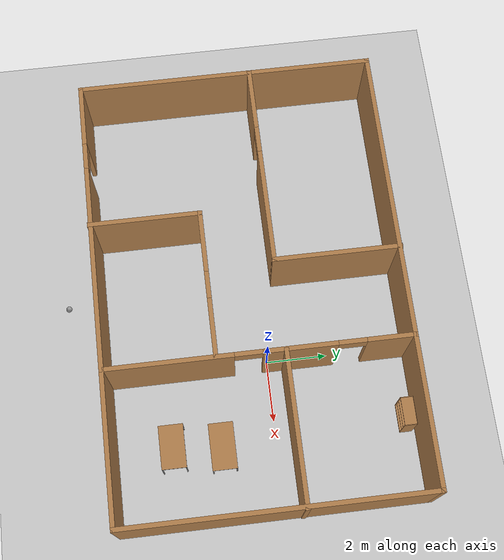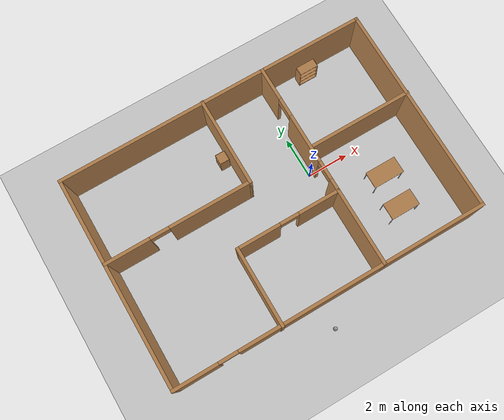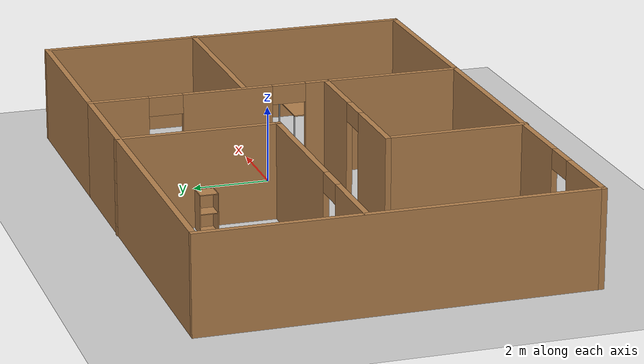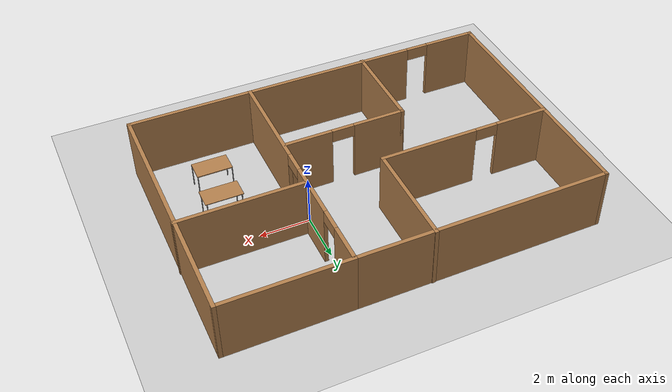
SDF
<sdf version="1.6">
 <world name="default">
  <plugin name="welcome" filename="libwelcome.so"/>
  <light name="sun" type="directional">
   <pose>0 0 10 0 -0 0</pose>
   <diffuse>0.8 0.8 0.8 1</diffuse>
   <specular>0.1 0.1 0.1 1</specular>
   <attenuation>
    <range>1000</range>
    <constant>0.9</constant>
    <linear>0.01</linear>
    <quadratic>0.001</quadratic>
   </attenuation>
   <direction>-0.5 0.5 -1</direction>
  </light>
  <model name="ground_plane">
   <static>1</static>
   <link name="link">
    <collision name="collision">
     <geometry><plane><normal>0 0 1</normal><size>100 100</size></plane></geometry>
     <surface><friction><ode><mu>100</mu><mu2>50</mu2></ode></friction></surface>
    </collision>
    <visual name="visual">
     <cast_shadows>0</cast_shadows>
     <geometry><plane><normal>0 0 1</normal><size>100 100</size></plane></geometry>
     <material>
      <script><uri>file://media/materials/scripts/gazebo.material</uri><name>Gazebo/Grey</name></script>
     </material>
    </visual>
   </link>
  </model>
  <gravity>0 0 -9.8</gravity>
  <magnetic_field>6e-06 2.3e-05 -4.2e-05</magnetic_field>
  <atmosphere type="adiabatic"/>
  <physics name="default_physics" default="0" type="ode">
   <max_step_size>0.001</max_step_size>
   <real_time_factor>1</real_time_factor>
   <real_time_update_rate>1000</real_time_update_rate>
  </physics>
  <scene><ambient>0.4 0.4 0.4 1</ambient><background>0.7 0.7 0.7 1</background><shadows>1</shadows></scene>
  <spherical_coordinates>
   <surface_model>EARTH_WGS84</surface_model>
   <latitude_deg>0</latitude_deg>
   <longitude_deg>0</longitude_deg>
   <elevation>0</elevation>
   <heading_deg>0</heading_deg>
  </spherical_coordinates>
  <model name="mybuilding">
   <pose>-2.23015 -0.308468 0 0 -0 0</pose>
   <link name="Wall_10">
    <pose>-3.92505 0.854 0 0 -0 0</pose>
    <visual name="Wall_10_Visual_0">
     <pose>-2.42075 0 1.25 0 -0 0</pose>
     <geometry><box><size>2.1585 0.15 2.5</size></box></geometry>
     <material>
      <script><uri>file://media/materials/scripts/gazebo.material</uri><name>Gazebo/Wood</name></script>
      <ambient>0.435294 0.796078 0.67451 1</ambient>
     </material>
    </visual>
    <collision name="Wall_10_Collision_0">
     <geometry><box><size>2.1585 0.15 2.5</size></box></geometry>
     <pose>-2.42075 0 1.25 0 -0 0</pose>
    </collision>
    <visual name="Wall_10_Visual_1">
     <pose>1.52925 0 1.25 0 -0 0</pose>
     <geometry><box><size>3.9415 0.15 2.5</size></box></geometry>
     <material>
      <script><uri>file://media/materials/scripts/gazebo.material</uri><name>Gazebo/Wood</name></script>
      <ambient>0.435294 0.796078 0.67451 1</ambient>
     </material>
    </visual>
    <collision name="Wall_10_Collision_1">
     <geometry><box><size>3.9415 0.15 2.5</size></box></geometry>
     <pose>1.52925 0 1.25 0 -0 0</pose>
    </collision>
    <visual name="Wall_10_Visual_2">
     <pose>-0.891495 0 2.25 0 -0 0</pose>
     <geometry><box><size>0.9 0.15 0.5</size></box></geometry>
     <material>
      <script><uri>file://media/materials/scripts/gazebo.material</uri><name>Gazebo/Wood</name></script>
      <ambient>0.435294 0.796078 0.67451 1</ambient>
     </material>
    </visual>
    <collision name="Wall_10_Collision_2">
     <geometry><box><size>0.9 0.15 0.5</size></box></geometry>
     <pose>-0.891495 0 2.25 0 -0 0</pose>
    </collision>
   </link>
   <link name="Wall_11">
    <collision name="Wall_11_Collision">
     <geometry><box><size>4.25 0.15 2.5</size></box></geometry>
     <pose>0 0 1.25 0 -0 0</pose>
    </collision>
    <visual name="Wall_11_Visual">
     <pose>0 0 1.25 0 -0 0</pose>
     <geometry><box><size>4.25 0.15 2.5</size></box></geometry>
     <material>
      <script><uri>file://media/materials/scripts/gazebo.material</uri><name>Gazebo/Wood</name></script>
      <ambient>0.435294 0.796078 0.67451 1</ambient>
     </material>
    </visual>
    <pose>-0.500053 2.904 0 0 -0 1.5708</pose>
   </link>
   <link name="Wall_13">
    <pose>0.042947 -1.354 0 0 -0 0</pose>
    <visual name="Wall_13_Visual_0">
     <pose>-1.44475 0 1.25 0 -0 0</pose>
     <geometry><box><size>2.1105 0.15 2.5</size></box></geometry>
     <material>
      <script><uri>file://media/materials/scripts/gazebo.material</uri><name>Gazebo/Wood</name></script>
      <ambient>0.435294 0.796078 0.67451 1</ambient>
     </material>
    </visual>
    <collision name="Wall_13_Collision_0">
     <geometry><box><size>2.1105 0.15 2.5</size></box></geometry>
     <pose>-1.44475 0 1.25 0 -0 0</pose>
    </collision>
    <visual name="Wall_13_Visual_1">
     <pose>1.50525 0 1.25 0 -0 0</pose>
     <geometry><box><size>1.9895 0.15 2.5</size></box></geometry>
     <material>
      <script><uri>file://media/materials/scripts/gazebo.material</uri><name>Gazebo/Wood</name></script>
      <ambient>0.435294 0.796078 0.67451 1</ambient>
     </material>
    </visual>
    <collision name="Wall_13_Collision_1">
     <geometry><box><size>1.9895 0.15 2.5</size></box></geometry>
     <pose>1.50525 0 1.25 0 -0 0</pose>
    </collision>
    <visual name="Wall_13_Visual_2">
     <pose>0.060505 0 2.25 0 -0 0</pose>
     <geometry><box><size>0.9 0.15 0.5</size></box></geometry>
     <material>
      <script><uri>file://media/materials/scripts/gazebo.material</uri><name>Gazebo/Wood</name></script>
      <ambient>0.435294 0.796078 0.67451 1</ambient>
     </material>
    </visual>
    <collision name="Wall_13_Collision_2">
     <geometry><box><size>0.9 0.15 0.5</size></box></geometry>
     <pose>0.060505 0 2.25 0 -0 0</pose>
    </collision>
   </link>
   <link name="Wall_15">
    <collision name="Wall_15_Collision">
     <geometry><box><size>3.75 0.15 2.5</size></box></geometry>
     <pose>0 0 1.25 0 -0 0</pose>
    </collision>
    <visual name="Wall_15_Visual">
     <pose>0 0 1.25 0 -0 0</pose>
     <geometry><box><size>3.75 0.15 2.5</size></box></geometry>
     <material>
      <script><uri>file://media/materials/scripts/gazebo.material</uri><name>Gazebo/Wood</name></script>
      <ambient>0.435294 0.796078 0.67451 1</ambient>
     </material>
    </visual>
    <pose>-2.38205 -3.154 0 0 0 -1.5708</pose>
   </link>
   <link name="Wall_17">
    <collision name="Wall_17_Collision">
     <geometry><box><size>5 0.15 2.5</size></box></geometry>
     <pose>0 0 1.25 0 -0 0</pose>
    </collision>
    <visual name="Wall_17_Visual">
     <pose>0 0 1.25 0 -0 0</pose>
     <geometry><box><size>5 0.15 2.5</size></box></geometry>
     <material>
      <script><uri>file://media/materials/scripts/gazebo.material</uri><name>Gazebo/Wood</name></script>
      <ambient>1 1 1 1</ambient>
     </material>
    </visual>
    <pose>4.90805 -4.921 0 0 -0 0</pose>
   </link>
   <link name="Wall_18">
    <collision name="Wall_18_Collision">
     <geometry><box><size>10 0.15 2.5</size></box></geometry>
     <pose>0 0 1.25 0 -0 0</pose>
    </collision>
    <visual name="Wall_18_Visual">
     <pose>0 0 1.25 0 -0 0</pose>
     <geometry><box><size>10 0.15 2.5</size></box></geometry>
     <material>
      <script><uri>file://media/materials/scripts/gazebo.material</uri><name>Gazebo/Wood</name></script>
      <ambient>1 1 1 1</ambient>
     </material>
    </visual>
    <pose>7.33305 0.004003 0 0 -0 1.5708</pose>
   </link>
   <link name="Wall_19">
    <collision name="Wall_19_Collision">
     <geometry><box><size>5 0.15 2.5</size></box></geometry>
     <pose>0 0 1.25 0 -0 0</pose>
    </collision>
    <visual name="Wall_19_Visual">
     <pose>0 0 1.25 0 -0 0</pose>
     <geometry><box><size>5 0.15 2.5</size></box></geometry>
     <material>
      <script><uri>file://media/materials/scripts/gazebo.material</uri><name>Gazebo/Wood</name></script>
      <ambient>0.435294 0.796078 0.67451 1</ambient>
     </material>
    </visual>
    <pose>4.90805 4.929 0 0 -0 3.14159</pose>
   </link>
   <link name="Wall_21">
    <collision name="Wall_21_Collision">
     <geometry><box><size>5 0.15 2.5</size></box></geometry>
     <pose>0 0 1.25 0 -0 0</pose>
    </collision>
    <visual name="Wall_21_Visual">
     <pose>0 0 1.25 0 -0 0</pose>
     <geometry><box><size>5 0.15 2.5</size></box></geometry>
     <material>
      <script><uri>file://media/materials/scripts/gazebo.material</uri><name>Gazebo/Wood</name></script>
      <ambient>0.435294 0.796078 0.67451 1</ambient>
     </material>
    </visual>
    <pose>4.94195 0.854 0 0 -0 0</pose>
   </link>
   <link name="Wall_5">
    <collision name="Wall_5_Collision">
     <geometry><box><size>10 0.15 2.5</size></box></geometry>
     <pose>0 0 1.25 0 -0 0</pose>
    </collision>
    <visual name="Wall_5_Visual">
     <pose>0 0 1.25 0 -0 0</pose>
     <geometry><box><size>10 0.15 2.5</size></box></geometry>
     <material>
      <script><uri>file://media/materials/scripts/gazebo.material</uri><name>Gazebo/Wood</name></script>
      <ambient>1 1 1 1</ambient>
     </material>
    </visual>
    <pose>-7.36695 0.004003 0 0 -0 1.5708</pose>
   </link>
   <link name="Wall_6">
    <collision name="Wall_6_Collision">
     <geometry><box><size>10 0.15 2.5</size></box></geometry>
     <pose>0 0 1.25 0 -0 0</pose>
    </collision>
    <visual name="Wall_6_Visual">
     <pose>0 0 1.25 0 -0 0</pose>
     <geometry><box><size>10 0.15 2.5</size></box></geometry>
     <material>
      <script><uri>file://media/materials/scripts/gazebo.material</uri><name>Gazebo/Wood</name></script>
      <ambient>1 1 1 1</ambient>
     </material>
    </visual>
    <pose>-2.44195 4.929 0 0 -0 0</pose>
   </link>
   <link name="Wall_7">
    <pose>2.48305 0.004003 0 0 0 -1.5708</pose>
    <visual name="Wall_7_Visual_0">
     <pose>-4.19877 0 1.25 0 -0 0</pose>
     <geometry><box><size>1.60246 0.15 2.5</size></box></geometry>
     <material>
      <script><uri>file://media/materials/scripts/gazebo.material</uri><name>Gazebo/Wood</name></script>
      <ambient>0.435294 0.796078 0.67451 1</ambient>
     </material>
    </visual>
    <collision name="Wall_7_Collision_0">
     <geometry><box><size>1.60246 0.15 2.5</size></box></geometry>
     <pose>-4.19877 0 1.25 0 -0 0</pose>
    </collision>
    <visual name="Wall_7_Visual_1">
     <pose>-1.30754 0 1.25 0 -0 0</pose>
     <geometry><box><size>2.38 0.15 2.5</size></box></geometry>
     <material>
      <script><uri>file://media/materials/scripts/gazebo.material</uri><name>Gazebo/Wood</name></script>
      <ambient>0.435294 0.796078 0.67451 1</ambient>
     </material>
    </visual>
    <collision name="Wall_7_Collision_1">
     <geometry><box><size>2.38 0.15 2.5</size></box></geometry>
     <pose>-1.30754 0 1.25 0 -0 0</pose>
    </collision>
    <visual name="Wall_7_Visual_2">
     <pose>2.89123 0 1.25 0 -0 0</pose>
     <geometry><box><size>4.21754 0.15 2.5</size></box></geometry>
     <material>
      <script><uri>file://media/materials/scripts/gazebo.material</uri><name>Gazebo/Wood</name></script>
      <ambient>0.435294 0.796078 0.67451 1</ambient>
     </material>
    </visual>
    <collision name="Wall_7_Collision_2">
     <geometry><box><size>4.21754 0.15 2.5</size></box></geometry>
     <pose>2.89123 0 1.25 0 -0 0</pose>
    </collision>
    <visual name="Wall_7_Visual_3">
     <pose>-2.94754 0 2.25 0 -0 0</pose>
     <geometry><box><size>0.9 0.15 0.5</size></box></geometry>
     <material>
      <script><uri>file://media/materials/scripts/gazebo.material</uri><name>Gazebo/Wood</name></script>
      <ambient>0.435294 0.796078 0.67451 1</ambient>
     </material>
    </visual>
    <collision name="Wall_7_Collision_3">
     <geometry><box><size>0.9 0.15 0.5</size></box></geometry>
     <pose>-2.94754 0 2.25 0 -0 0</pose>
    </collision>
    <visual name="Wall_7_Visual_4">
     <pose>0.332463 0 2.25 0 -0 0</pose>
     <geometry><box><size>0.9 0.15 0.5</size></box></geometry>
     <material>
      <script><uri>file://media/materials/scripts/gazebo.material</uri><name>Gazebo/Wood</name></script>
      <ambient>0.435294 0.796078 0.67451 1</ambient>
     </material>
    </visual>
    <collision name="Wall_7_Collision_4">
     <geometry><box><size>0.9 0.15 0.5</size></box></geometry>
     <pose>0.332463 0 2.25 0 -0 0</pose>
    </collision>
   </link>
   <link name="Wall_8">
    <pose>-2.44195 -4.921 0 0 -0 3.14159</pose>
    <visual name="Wall_8_Visual_0">
     <pose>-1.5177 0 1.25 0 -0 0</pose>
     <geometry><box><size>6.9646 0.15 2.5</size></box></geometry>
     <material>
      <script><uri>file://media/materials/scripts/gazebo.material</uri><name>Gazebo/Wood</name></script>
      <ambient>1 1 1 1</ambient>
     </material>
    </visual>
    <collision name="Wall_8_Collision_0">
     <geometry><box><size>6.9646 0.15 2.5</size></box></geometry>
     <pose>-1.5177 0 1.25 0 -0 0</pose>
    </collision>
    <visual name="Wall_8_Visual_1">
     <pose>3.9323 0 1.25 0 -0 0</pose>
     <geometry><box><size>2.1354 0.15 2.5</size></box></geometry>
     <material>
      <script><uri>file://media/materials/scripts/gazebo.material</uri><name>Gazebo/Wood</name></script>
      <ambient>1 1 1 1</ambient>
     </material>
    </visual>
    <collision name="Wall_8_Collision_1">
     <geometry><box><size>2.1354 0.15 2.5</size></box></geometry>
     <pose>3.9323 0 1.25 0 -0 0</pose>
    </collision>
    <visual name="Wall_8_Visual_2">
     <pose>2.4146 0 2.25 0 -0 0</pose>
     <geometry><box><size>0.9 0.15 0.5</size></box></geometry>
     <material>
      <script><uri>file://media/materials/scripts/gazebo.material</uri><name>Gazebo/Wood</name></script>
      <ambient>1 1 1 1</ambient>
     </material>
    </visual>
    <collision name="Wall_8_Collision_2">
     <geometry><box><size>0.9 0.15 0.5</size></box></geometry>
     <pose>2.4146 0 2.25 0 -0 0</pose>
    </collision>
   </link>
   <static>1</static>
  </model>
  <model name="table">
   <static>0</static>
   <link name="link">
    <collision name="surface">
     <pose>0 0 1 0 -0 0</pose>
     <geometry><box><size>1.5 0.8 0.03</size></box></geometry>
     <surface><friction><ode><mu>0.6</mu><mu2>0.6</mu2></ode></friction></surface>
    </collision>
    <visual name="visual1">
     <pose>0 0 1 0 -0 0</pose>
     <geometry><box><size>1.4 0.8 0.04</size></box></geometry>
     <material>
      <script><uri>file://media/materials/scripts/gazebo.material</uri><name>Gazebo/Wood</name></script>
     </material>
    </visual>
    <collision name="front_left_leg">
     <pose>0.68 0.38 0.5 0 -0 0</pose>
     <geometry><cylinder><radius>0.02</radius><length>1</length></cylinder></geometry>
    </collision>
    <visual name="front_left_leg">
     <pose>0.68 0.38 0.5 0 -0 0</pose>
     <geometry><cylinder><radius>0.02</radius><length>1</length></cylinder></geometry>
     <material>
      <script><uri>file://media/materials/scripts/gazebo.material</uri><name>Gazebo/Grey</name></script>
     </material>
    </visual>
    <collision name="front_right_leg">
     <pose>0.68 -0.38 0.5 0 -0 0</pose>
     <geometry><cylinder><radius>0.02</radius><length>1</length></cylinder></geometry>
    </collision>
    <visual name="front_right_leg">
     <pose>0.68 -0.38 0.5 0 -0 0</pose>
     <geometry><cylinder><radius>0.02</radius><length>1</length></cylinder></geometry>
     <material>
      <script><uri>file://media/materials/scripts/gazebo.material</uri><name>Gazebo/Grey</name></script>
     </material>
    </visual>
    <collision name="back_right_leg">
     <pose>-0.68 -0.38 0.5 0 -0 0</pose>
     <geometry><cylinder><radius>0.02</radius><length>1</length></cylinder></geometry>
    </collision>
    <visual name="back_right_leg">
     <pose>-0.68 -0.38 0.5 0 -0 0</pose>
     <geometry><cylinder><radius>0.02</radius><length>1</length></cylinder></geometry>
     <material>
      <script><uri>file://media/materials/scripts/gazebo.material</uri><name>Gazebo/Grey</name></script>
     </material>
    </visual>
    <collision name="back_left_leg">
     <pose>-0.68 0.38 0.5 0 -0 0</pose>
     <geometry><cylinder><radius>0.02</radius><length>1</length></cylinder></geometry>
    </collision>
    <visual name="back_left_leg">
     <pose>-0.68 0.38 0.5 0 -0 0</pose>
     <geometry><cylinder><radius>0.02</radius><length>1</length></cylinder></geometry>
     <material>
      <script><uri>file://media/materials/scripts/gazebo.material</uri><name>Gazebo/Grey</name></script>
     </material>
    </visual>
    <inertial>
     <inertia><ixx>1</ixx><ixy>0</ixy><ixz>0</ixz><iyy>1</iyy><iyz>0</iyz><izz>1</izz></inertia>
     <mass>1</mass>
    </inertial>
   </link>
   <pose>2.61439 -3.3416 -1e-06 0 1e-06 0</pose>
  </model>
  <model name="bookshelf">
   <static>1</static>
   <link name="link">
    <inertial><mass>1</mass></inertial>
    <collision name="back">
     <pose>0 0.005 0.6 0 -0 0</pose>
     <geometry><box><size>0.9 0.01 1.2</size></box></geometry>
    </collision>
    <visual name="visual1">
     <pose>0 0.005 0.6 0 -0 0</pose>
     <geometry><box><size>0.9 0.01 1.2</size></box></geometry>
     <material>
      <script><uri>file://media/materials/scripts/gazebo.material</uri><name>Gazebo/Wood</name></script>
     </material>
    </visual>
    <collision name="left_side">
     <pose>0.45 -0.195 0.6 0 -0 0</pose>
     <geometry><box><size>0.02 0.4 1.2</size></box></geometry>
    </collision>
    <visual name="visual2">
     <pose>0.45 -0.195 0.6 0 -0 0</pose>
     <geometry><box><size>0.02 0.4 1.2</size></box></geometry>
     <material>
      <script><uri>file://media/materials/scripts/gazebo.material</uri><name>Gazebo/Wood</name></script>
     </material>
    </visual>
    <collision name="right_side">
     <pose>-0.45 -0.195 0.6 0 -0 0</pose>
     <geometry><box><size>0.02 0.4 1.2</size></box></geometry>
    </collision>
    <visual name="visual3">
     <pose>-0.45 -0.195 0.6 0 -0 0</pose>
     <geometry><box><size>0.02 0.4 1.2</size></box></geometry>
     <material>
      <script><uri>file://media/materials/scripts/gazebo.material</uri><name>Gazebo/Wood</name></script>
     </material>
    </visual>
    <collision name="bottom">
     <pose>0 -0.195 0.03 0 -0 0</pose>
     <geometry><box><size>0.88 0.4 0.06</size></box></geometry>
    </collision>
    <visual name="visual4">
     <pose>0 -0.195 0.03 0 -0 0</pose>
     <geometry><box><size>0.88 0.4 0.06</size></box></geometry>
     <material>
      <script><uri>file://media/materials/scripts/gazebo.material</uri><name>Gazebo/Wood</name></script>
     </material>
    </visual>
    <collision name="top">
     <pose>0 -0.195 1.19 0 -0 0</pose>
     <geometry><box><size>0.88 0.4 0.02</size></box></geometry>
    </collision>
    <visual name="visual5">
     <pose>0 -0.195 1.19 0 -0 0</pose>
     <geometry><box><size>0.88 0.4 0.02</size></box></geometry>
     <material>
      <script><uri>file://media/materials/scripts/gazebo.material</uri><name>Gazebo/Wood</name></script>
     </material>
    </visual>
    <collision name="low_shelf">
     <pose>0 -0.195 0.43 0 -0 0</pose>
     <geometry><box><size>0.88 0.4 0.02</size></box></geometry>
    </collision>
    <visual name="visual6">
     <pose>0 -0.195 0.43 0 -0 0</pose>
     <geometry><box><size>0.88 0.4 0.02</size></box></geometry>
     <material>
      <script><uri>file://media/materials/scripts/gazebo.material</uri><name>Gazebo/Wood</name></script>
     </material>
    </visual>
    <collision name="high_shelf">
     <pose>0 -0.195 0.8 0 -0 0</pose>
     <geometry><box><size>0.88 0.4 0.02</size></box></geometry>
    </collision>
    <visual name="visual7">
     <pose>0 -0.195 0.8 0 -0 0</pose>
     <geometry><box><size>0.88 0.4 0.02</size></box></geometry>
     <material>
      <script><uri>file://media/materials/scripts/gazebo.material</uri><name>Gazebo/Wood</name></script>
     </material>
    </visual>
   </link>
   <pose>2.38461 4.43677 0 0 -0 0</pose>
  </model>
  <model name="my_ball">
   <link name="link_0">
    <inertial>
     <mass>1</mass>
     <inertia><ixx>0.1</ixx><ixy>0</ixy><ixz>0</ixz><iyy>0.1</iyy><iyz>0</iyz><izz>0.1</izz></inertia>
    </inertial>
    <visual name="visual">
     <geometry><sphere><radius>0.1</radius></sphere></geometry>
     <material>
      <lighting>1</lighting>
      <script><uri>file://media/materials/scripts/gazebo.material</uri><name>Gazebo/Grey</name></script>
      <shader type="pixel"><normal_map>__default__</normal_map></shader>
      <ambient>1 1 1 1</ambient>
      <diffuse>1 1 1 1</diffuse>
      <specular>1 1 1 1</specular>
      <emissive>1 1 1 1</emissive>
     </material>
    </visual>
    <collision name="collision">
     <geometry><sphere><radius>0.1</radius></sphere></geometry>
     <surface>
      <friction>
       <ode><mu>1</mu><mu2>1</mu2><fdir1>0 0 0</fdir1><slip1>0</slip1><slip2>0</slip2></ode>
       <torsional>
        <coefficient>1</coefficient>
        <patch_radius>0</patch_radius>
        <surface_radius>0</surface_radius>
        <use_patch_radius>1</use_patch_radius>
        <ode><slip>0</slip></ode>
       </torsional>
      </friction>
      <bounce><restitution_coefficient>0</restitution_coefficient><threshold>1e+06</threshold></bounce>
      <contact>
       <collide_without_contact>0</collide_without_contact>
       <collide_without_contact_bitmask>1</collide_without_contact_bitmask>
       <collide_bitmask>1</collide_bitmask>
       <ode>
        <soft_cfm>0</soft_cfm>
        <soft_erp>0.2</soft_erp>
        <kp>1e+13</kp>
        <kd>1</kd>
        <max_vel>0.01</max_vel>
        <min_depth>0</min_depth>
       </ode>
       <bullet>
        <split_impulse>1</split_impulse>
        <split_impulse_penetration_threshold>-0.01</split_impulse_penetration_threshold>
        <soft_cfm>0</soft_cfm>
        <soft_erp>0.2</soft_erp>
        <kp>1e+13</kp>
        <kd>1</kd>
       </bullet>
      </contact>
     </surface>
    </collision>
   </link>
   <static>0</static>
   <pose>-2.60287 -6.43112 0.1 0 -0 0</pose>
  </model>
  <model name="table_0">
   <static>1</static>
   <link name="link">
    <collision name="surface">
     <pose>0 0 1 0 -0 0</pose>
     <geometry><box><size>1.5 0.8 0.03</size></box></geometry>
     <surface><friction><ode><mu>0.6</mu><mu2>0.6</mu2></ode></friction></surface>
    </collision>
    <visual name="visual1">
     <pose>0 0 1 0 -0 0</pose>
     <geometry><box><size>1.5 0.8 0.03</size></box></geometry>
     <material>
      <script><uri>file://media/materials/scripts/gazebo.material</uri><name>Gazebo/Wood</name></script>
     </material>
    </visual>
    <collision name="front_left_leg">
     <pose>0.68 0.38 0.5 0 -0 0</pose>
     <geometry><cylinder><radius>0.02</radius><length>1</length></cylinder></geometry>
    </collision>
    <visual name="front_left_leg">
     <pose>0.68 0.38 0.5 0 -0 0</pose>
     <geometry><cylinder><radius>0.02</radius><length>1</length></cylinder></geometry>
     <material>
      <script><uri>file://media/materials/scripts/gazebo.material</uri><name>Gazebo/Grey</name></script>
     </material>
    </visual>
    <collision name="front_right_leg">
     <pose>0.68 -0.38 0.5 0 -0 0</pose>
     <geometry><cylinder><radius>0.02</radius><length>1</length></cylinder></geometry>
    </collision>
    <visual name="front_right_leg">
     <pose>0.68 -0.38 0.5 0 -0 0</pose>
     <geometry><cylinder><radius>0.02</radius><length>1</length></cylinder></geometry>
     <material>
      <script><uri>file://media/materials/scripts/gazebo.material</uri><name>Gazebo/Grey</name></script>
     </material>
    </visual>
    <collision name="back_right_leg">
     <pose>-0.68 -0.38 0.5 0 -0 0</pose>
     <geometry><cylinder><radius>0.02</radius><length>1</length></cylinder></geometry>
    </collision>
    <visual name="back_right_leg">
     <pose>-0.68 -0.38 0.5 0 -0 0</pose>
     <geometry><cylinder><radius>0.02</radius><length>1</length></cylinder></geometry>
     <material>
      <script><uri>file://media/materials/scripts/gazebo.material</uri><name>Gazebo/Grey</name></script>
     </material>
    </visual>
    <collision name="back_left_leg">
     <pose>-0.68 0.38 0.5 0 -0 0</pose>
     <geometry><cylinder><radius>0.02</radius><length>1</length></cylinder></geometry>
    </collision>
    <visual name="back_left_leg">
     <pose>-0.68 0.38 0.5 0 -0 0</pose>
     <geometry><cylinder><radius>0.02</radius><length>1</length></cylinder></geometry>
     <material>
      <script><uri>file://media/materials/scripts/gazebo.material</uri><name>Gazebo/Grey</name></script>
     </material>
    </visual>
   </link>
   <pose>2.78 -1.75482 0 0 -0 0</pose>
  </model>
  <model name="cabinet">
   <static>1</static>
   <link name="cabinet_bottom_plate">
    <inertial>
     <pose>0 0 -1 0 -0 0</pose>
     <inertia><ixx>2.05</ixx><ixy>0</ixy><ixz>0</ixz><iyy>2.05</iyy><iyz>0</iyz><izz>2.05</izz></inertia>
     <mass>25</mass>
    </inertial>
    <collision name="cabinet_bottom_plate_geom">
     <pose>0 0 0.01 0 -0 0</pose>
     <geometry><box><size>0.45 0.45 0.02</size></box></geometry>
    </collision>
    <visual name="cabinet_bottom_plate_geom_visual">
     <pose>0 0 0.01 0 -0 0</pose>
     <geometry><box><size>0.45 0.45 0.02</size></box></geometry>
     <material>
      <script><uri>file://media/materials/scripts/gazebo.material</uri><name>Gazebo/Wood</name></script>
     </material>
    </visual>
    <collision name="cabinet_bottom_plate_geom_cabinet_back_plate">
     <pose>0.235 0 0.51 0 -0 0</pose>
     <geometry><box><size>0.02 0.45 1.02</size></box></geometry>
    </collision>
    <visual name="cabinet_bottom_plate_geom_cabinet_back_plate_visual">
     <pose>0.235 0 0.51 0 -0 0</pose>
     <geometry><box><size>0.02 0.45 1.02</size></box></geometry>
     <material>
      <script><uri>file://media/materials/scripts/gazebo.material</uri><name>Gazebo/Wood</name></script>
     </material>
    </visual>
    <collision name="cabinet_bottom_plate_geom_cabinet_left_plate">
     <pose>0 0.235 0.51 0 -0 0</pose>
     <geometry><box><size>0.45 0.02 1.02</size></box></geometry>
    </collision>
    <visual name="cabinet_bottom_plate_geom_cabinet_left_plate_visual">
     <pose>0 0.235 0.51 0 -0 0</pose>
     <geometry><box><size>0.45 0.02 1.02</size></box></geometry>
     <material>
      <script><uri>file://media/materials/scripts/gazebo.material</uri><name>Gazebo/Wood</name></script>
     </material>
    </visual>
    <collision name="cabinet_bottom_plate_geom_cabinet_middle_plate">
     <pose>0 0 0.51 0 -0 0</pose>
     <geometry><box><size>0.45 0.45 0.02</size></box></geometry>
    </collision>
    <visual name="cabinet_bottom_plate_geom_cabinet_middle_plate_visual">
     <pose>0 0 0.51 0 -0 0</pose>
     <geometry><box><size>0.45 0.45 0.02</size></box></geometry>
     <material>
      <script><uri>file://media/materials/scripts/gazebo.material</uri><name>Gazebo/Wood</name></script>
     </material>
    </visual>
    <collision name="cabinet_bottom_plate_geom_cabinet_right_plate">
     <pose>0 -0.235 0.51 0 -0 0</pose>
     <geometry><box><size>0.45 0.02 1.02</size></box></geometry>
    </collision>
    <visual name="cabinet_bottom_plate_geom_cabinet_right_plate_visual">
     <pose>0 -0.235 0.51 0 -0 0</pose>
     <geometry><box><size>0.45 0.02 1.02</size></box></geometry>
     <material>
      <script><uri>file://media/materials/scripts/gazebo.material</uri><name>Gazebo/Wood</name></script>
     </material>
    </visual>
    <collision name="cabinet_bottom_plate_geom_cabinet_top_plate">
     <pose>0 0 1.01 0 -0 0</pose>
     <geometry><box><size>0.45 0.45 0.02</size></box></geometry>
    </collision>
    <visual name="cabinet_bottom_plate_geom_cabinet_top_plate_visual">
     <pose>0 0 1.01 0 -0 0</pose>
     <geometry><box><size>0.45 0.45 0.02</size></box></geometry>
     <material>
      <script><uri>file://media/materials/scripts/gazebo.material</uri><name>Gazebo/Wood</name></script>
     </material>
    </visual>
   </link>
   <pose>-3.0809 2.50086 0 0 -0 0</pose>
  </model>
 </world>
</sdf>
